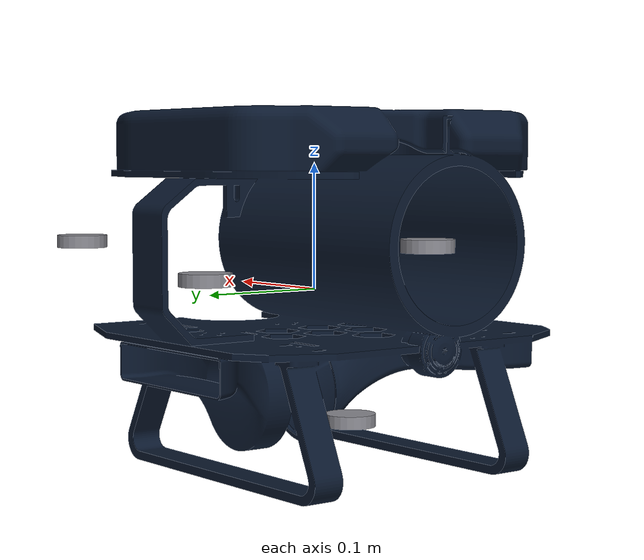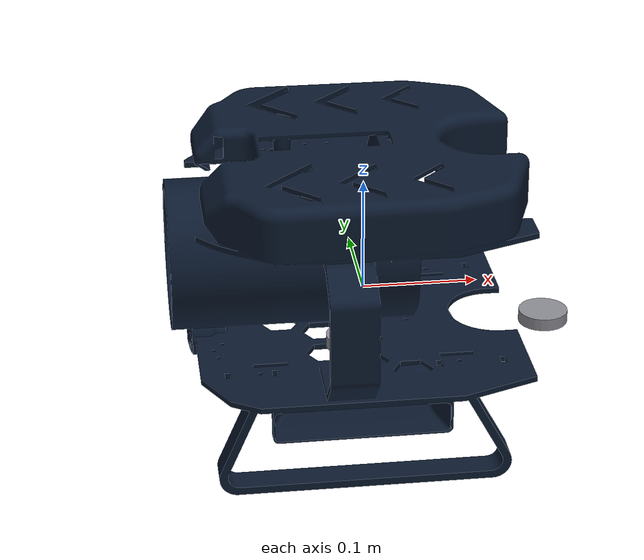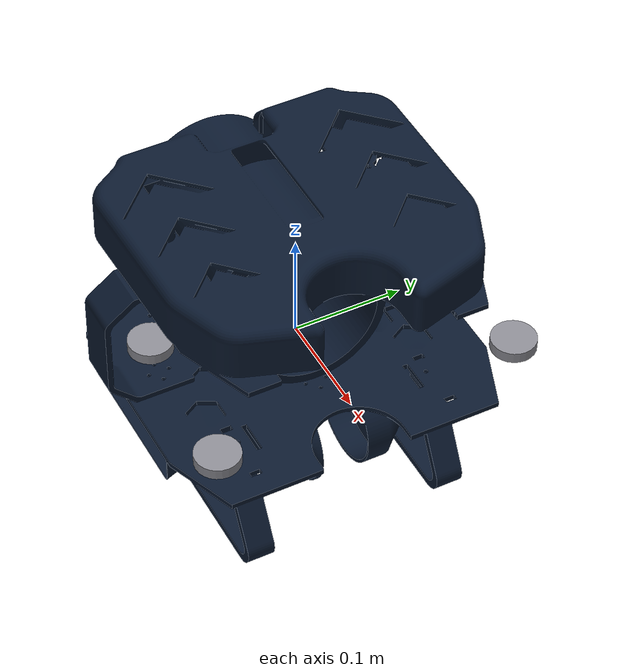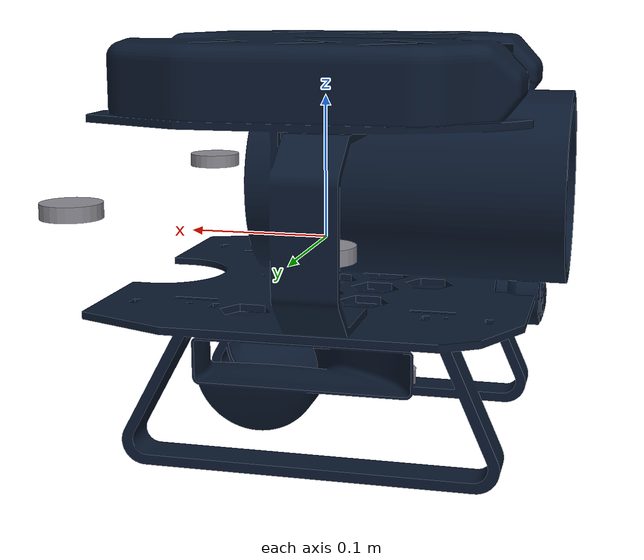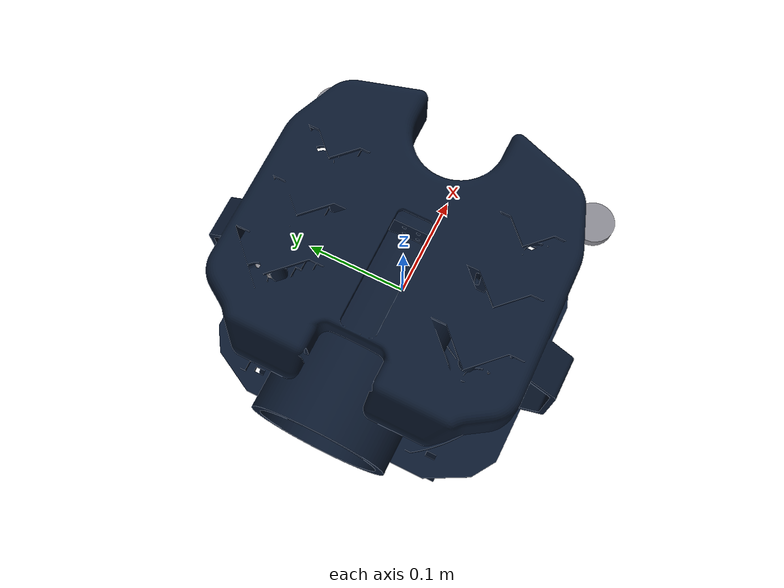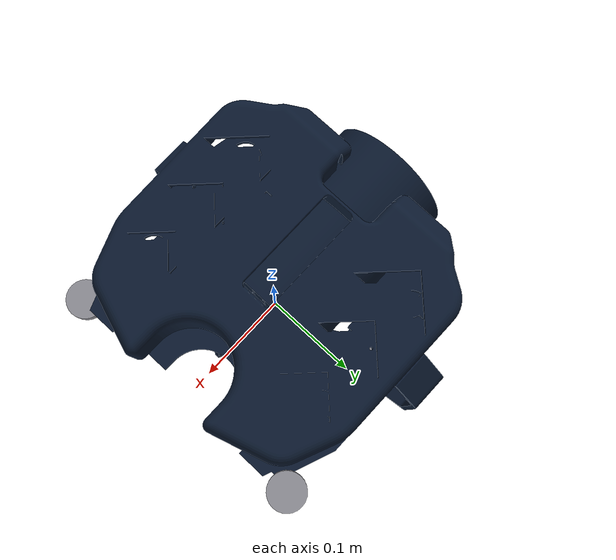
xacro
<?xml version="1.0"?>
<robot name="hydroship_rov" xmlns:xacro="http://www.ros.org/wiki/xacro">

  <!-- ============================ Properties ============================ -->

  <!-- TODO: replace with real measured mass (kg). Placeholder used only
       to seed a plausible inertia tensor from hull geometry below. -->
  <xacro:property name="hull_mass" value="15.0"/>

  <!-- Convex-hull-derived mass properties (assumed uniform density at
       hull_mass above). Replace with CAD mass properties or measured
       values once batteries/electronics/ballast are finalized. -->
  <xacro:property name="com_xyz" value="-0.00344 0.09459 -0.07185"/>
  <xacro:property name="ixx" value="0.265103"/>
  <xacro:property name="ixy" value="-0.008048"/>
  <xacro:property name="ixz" value="-0.002350"/>
  <xacro:property name="iyy" value="0.173013"/>
  <xacro:property name="iyz" value="-0.015907"/>
  <xacro:property name="izz" value="0.282969"/>

  <xacro:property name="thruster_mass" value="0.05"/>
  <xacro:property name="thruster_radius" value="0.02"/>
  <xacro:property name="thruster_length" value="0.01"/>

  <!-- ============================ Materials ============================ -->

  <material name="hull_navy">
    <color rgba="0.043 0.098 0.184 1.0"/>
  </material>
  <material name="thruster_grey">
    <color rgba="0.55 0.55 0.58 1.0"/>
  </material>

  <!-- ============================ Base link ============================ -->

  <link name="base_link">
    <visual>
      <origin xyz="0 0 0" rpy="0 0 0"/>
      <geometry>
        <mesh filename="package://hydroship_description/meshes/hull_visual.stl" scale="1 1 1"/>
      </geometry>
      <material name="hull_navy"/>
    </visual>

    <collision>
      <origin xyz="0 0 0" rpy="0 0 0"/>
      <geometry>
        <mesh filename="package://hydroship_description/meshes/hull_collision.stl" scale="1 1 1"/>
      </geometry>
    </collision>

    <inertial>
      <origin xyz="${com_xyz}" rpy="0 0 0"/>
      <mass value="${hull_mass}"/>
      <inertia ixx="${ixx}" ixy="${ixy}" ixz="${ixz}"
               iyy="${iyy}" iyz="${iyz}" izz="${izz}"/>
    </inertial>
  </link>

  <!-- ============================ Thruster macro ============================ -->

  <xacro:macro name="thruster" params="label fbx_ref xyz axis">
    <link name="thruster_${label}_link">
      <visual>
        <origin xyz="0 0 0" rpy="0 0 0"/>
        <geometry>
          <cylinder radius="${thruster_radius}" length="${thruster_length}"/>
        </geometry>
        <material name="thruster_grey"/>
      </visual>
      <inertial>
        <mass value="${thruster_mass}"/>
        <inertia ixx="1e-5" ixy="0" ixz="0" iyy="1e-5" iyz="0" izz="1e-5"/>
      </inertial>
    </link>

    <!-- fbx_ref kept as comment only, for cross-checking against the
         original pyassimp extraction (${fbx_ref}) -->
    <joint name="thruster_${label}_joint" type="continuous">
      <parent link="base_link"/>
      <child link="thruster_${label}_link"/>
      <origin xyz="${xyz}" rpy="0 0 0"/>
      <axis xyz="${axis}"/>
    </joint>
  </xacro:macro>

  <!-- ============================ Thruster instances ============================ -->
  <!-- T100 x4 (vectored, ~1.77 kgf max) + T200 x2 (vertical, ~3.6 kgf max) -->

  <xacro:thruster label="T100_A" fbx_ref="thruster_4" xyz="0.1296 0.1371 0.0374"    axis="1 0 0"/>
  <xacro:thruster label="T100_B" fbx_ref="thruster_5" xyz="-0.0455 -0.0003 -0.0994" axis="0 1 0"/>
  <xacro:thruster label="T100_C" fbx_ref="thruster_3" xyz="0.1298 -0.1371 0.0336"   axis="1 0 0"/>
  <xacro:thruster label="T100_D" fbx_ref="thruster_6" xyz="-0.1364 0.0003 0.0403"   axis="0 0 1"/>
  <xacro:thruster label="T200_E" fbx_ref="thruster_1" xyz="-0.0275 -0.1234 0.0142"  axis="1 0 0"/>
  <xacro:thruster label="T200_F" fbx_ref="thruster_2" xyz="-0.0290 0.1228 0.0148"   axis="1 0 0"/>

</robot>
